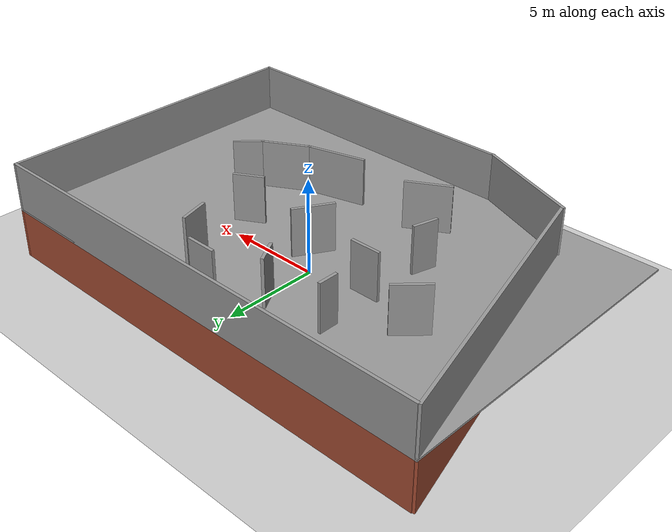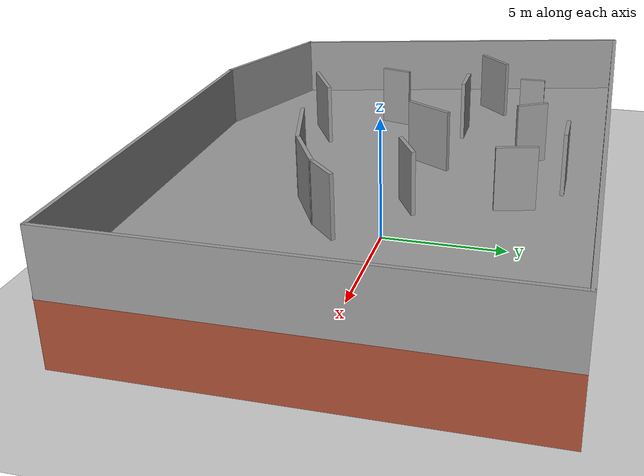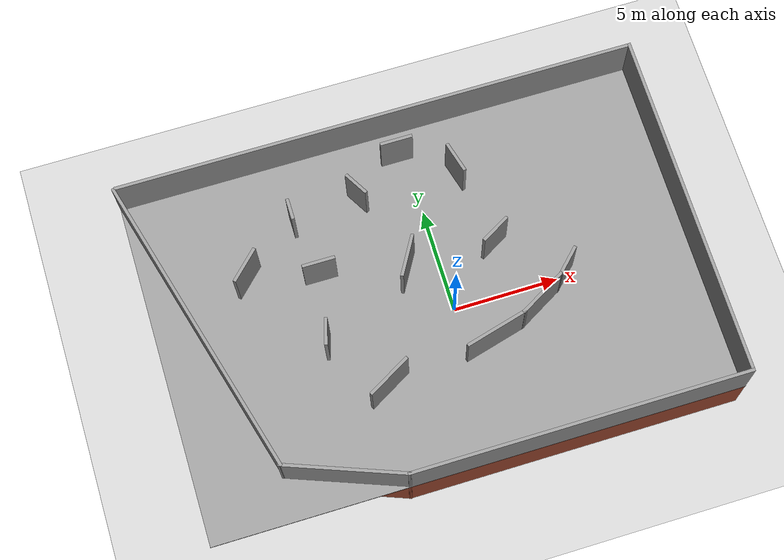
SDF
<sdf version="1.6">
 <world name="default">
  <light name="sun" type="directional">
   <pose>0 0 10 0 -0 0</pose>
   <diffuse>0.8 0.8 0.8 1</diffuse>
   <specular>0.2 0.2 0.2 1</specular>
   <attenuation>
    <range>1000</range>
    <constant>0.9</constant>
    <linear>0.01</linear>
    <quadratic>0.001</quadratic>
   </attenuation>
   <direction>-0.5 0.1 -0.9</direction>
  </light>
  <model name="ground_plane">
   <static>1</static>
   <link name="link">
    <collision name="collision">
     <geometry><plane><normal>0 0 1</normal><size>100 100</size></plane></geometry>
     <surface>
      <contact><collide_bitmask>65535</collide_bitmask></contact>
      <friction><ode><mu>100</mu><mu2>50</mu2></ode></friction>
     </surface>
    </collision>
    <visual name="visual">
     <cast_shadows>0</cast_shadows>
     <geometry><plane><normal>0 0 1</normal><size>100 100</size></plane></geometry>
     <material>
      <script><uri>file://media/materials/scripts/gazebo.material</uri><name>Gazebo/Grey</name></script>
     </material>
    </visual>
   </link>
  </model>
  <gravity>0 0 -9.8</gravity>
  <magnetic_field>6e-06 2.3e-05 -4.2e-05</magnetic_field>
  <atmosphere type="adiabatic"/>
  <physics name="default_physics" default="0" type="ode">
   <max_step_size>0.001</max_step_size>
   <real_time_factor>1</real_time_factor>
   <real_time_update_rate>1000</real_time_update_rate>
  </physics>
  <scene><ambient>0.4 0.4 0.4 1</ambient><background>0.7 0.7 0.7 1</background><shadows>1</shadows></scene>
  <spherical_coordinates>
   <surface_model>EARTH_WGS84</surface_model>
   <latitude_deg>0</latitude_deg>
   <longitude_deg>0</longitude_deg>
   <elevation>0</elevation>
   <heading_deg>0</heading_deg>
  </spherical_coordinates>
  <model name="locoindoor1">
   <pose>-1.25413 0.21493 0 0 -0 0</pose>
   <link name="Floor_0">
    <collision name="Floor_0_Collision">
     <geometry><box><size>24.3691 16.2718 0.1</size></box></geometry>
     <pose>0 0 0.05 0 -0 0</pose>
    </collision>
    <visual name="Floor_0_Visual">
     <pose>0 0 0.05 0 -0 0</pose>
     <geometry><box><size>24.3691 16.2718 0.1</size></box></geometry>
     <material>
      <script><uri>file://media/materials/scripts/gazebo.material</uri><name>Gazebo/Grey</name></script>
      <ambient>1 1 1 1</ambient>
     </material>
     <meta><layer>1</layer></meta>
    </visual>
    <pose>0 -0 2.5 0 -0 0</pose>
   </link>
   <link name="Wall_0">
    <collision name="Wall_0_Collision">
     <geometry><box><size>3 0.15 2.5</size></box></geometry>
     <pose>0 0 1.25 0 -0 0</pose>
    </collision>
    <visual name="Wall_0_Visual">
     <pose>0 0 1.25 0 -0 0</pose>
     <geometry><box><size>3 0.15 2.5</size></box></geometry>
     <material>
      <script><uri>file://media/materials/scripts/gazebo.material</uri><name>Gazebo/Bricks</name></script>
      <ambient>1 1 1 1</ambient>
     </material>
     <meta><layer>0</layer></meta>
    </visual>
    <pose>2.21057 -3.03611 0 0 -0 0.261799</pose>
   </link>
   <link name="Wall_1">
    <collision name="Wall_1_Collision">
     <geometry><box><size>2.5 0.15 2.5</size></box></geometry>
     <pose>0 0 1.25 0 -0 0</pose>
    </collision>
    <visual name="Wall_1_Visual">
     <pose>0 0 1.25 0 -0 0</pose>
     <geometry><box><size>2.5 0.15 2.5</size></box></geometry>
     <material>
      <script><uri>file://media/materials/scripts/gazebo.material</uri><name>Gazebo/Bricks</name></script>
      <ambient>1 1 1 1</ambient>
     </material>
     <meta><layer>0</layer></meta>
    </visual>
    <pose>4.6046 -2.0798 0 0 -0 0.523599</pose>
   </link>
   <link name="Wall_12">
    <collision name="Wall_12_Collision">
     <geometry><box><size>2 0.15 2.5</size></box></geometry>
     <pose>0 0 1.25 0 -0 0</pose>
    </collision>
    <visual name="Wall_12_Visual">
     <pose>0 0 1.25 0 -0 0</pose>
     <geometry><box><size>2 0.15 2.5</size></box></geometry>
     <material>
      <script><uri>file://media/materials/scripts/gazebo.material</uri><name>Gazebo/Bricks</name></script>
      <ambient>1 1 1 1</ambient>
     </material>
     <meta><layer>0</layer></meta>
    </visual>
    <pose>-0.528882 1.2835 0 0 -0 -2.0944</pose>
   </link>
   <link name="Wall_14">
    <collision name="Wall_14_Collision">
     <geometry><box><size>1.25 0.15 2.5</size></box></geometry>
     <pose>0 0 1.25 0 -0 0</pose>
    </collision>
    <visual name="Wall_14_Visual">
     <pose>0 0 1.25 0 -0 0</pose>
     <geometry><box><size>1.25 0.15 2.5</size></box></geometry>
     <material>
      <script><uri>file://media/materials/scripts/gazebo.material</uri><name>Gazebo/Bricks</name></script>
      <ambient>1 1 1 1</ambient>
     </material>
     <meta><layer>0</layer></meta>
    </visual>
    <pose>-1.72621 5.16131 0 0 -0 -1.0472</pose>
   </link>
   <link name="Wall_16">
    <collision name="Wall_16_Collision">
     <geometry><box><size>1.5 0.15 2.5</size></box></geometry>
     <pose>0 0 1.25 0 -0 0</pose>
    </collision>
    <visual name="Wall_16_Visual">
     <pose>0 0 1.25 0 -0 0</pose>
     <geometry><box><size>1.5 0.15 2.5</size></box></geometry>
     <material>
      <script><uri>file://media/materials/scripts/gazebo.material</uri><name>Gazebo/Bricks</name></script>
      <ambient>1 1 1 1</ambient>
     </material>
     <meta><layer>0</layer></meta>
    </visual>
    <pose>-4.32962 2.11975 0 0 -0 3.14159</pose>
   </link>
   <link name="Wall_18">
    <collision name="Wall_18_Collision">
     <geometry><box><size>1 0.15 2.5</size></box></geometry>
     <pose>0 0 1.25 0 -0 0</pose>
    </collision>
    <visual name="Wall_18_Visual">
     <pose>0 0 1.25 0 -0 0</pose>
     <geometry><box><size>1 0.15 2.5</size></box></geometry>
     <material>
      <script><uri>file://media/materials/scripts/gazebo.material</uri><name>Gazebo/Bricks</name></script>
      <ambient>1 1 1 1</ambient>
     </material>
     <meta><layer>0</layer></meta>
    </visual>
    <pose>-4.85069 4.86084 0 0 -0 -1.5708</pose>
   </link>
   <link name="Wall_2">
    <collision name="Wall_2_Collision">
     <geometry><box><size>1.5 0.15 2.5</size></box></geometry>
     <pose>0 0 1.25 0 -0 0</pose>
    </collision>
    <visual name="Wall_2_Visual">
     <pose>0 0 1.25 0 -0 0</pose>
     <geometry><box><size>1.5 0.15 2.5</size></box></geometry>
     <material>
      <script><uri>file://media/materials/scripts/gazebo.material</uri><name>Gazebo/Bricks</name></script>
      <ambient>1 1 1 1</ambient>
     </material>
     <meta><layer>0</layer></meta>
    </visual>
    <pose>6.09947 -1.015 0 0 -0 0.785398</pose>
   </link>
   <link name="Wall_20">
    <collision name="Wall_20_Collision">
     <geometry><box><size>1.25 0.15 2.5</size></box></geometry>
     <pose>0 0 1.25 0 -0 0</pose>
    </collision>
    <visual name="Wall_20_Visual">
     <pose>0 0 1.25 0 -0 0</pose>
     <geometry><box><size>1.25 0.15 2.5</size></box></geometry>
     <material>
      <script><uri>file://media/materials/scripts/gazebo.material</uri><name>Gazebo/Bricks</name></script>
      <ambient>1 1 1 1</ambient>
     </material>
     <meta><layer>0</layer></meta>
    </visual>
    <pose>-4.88751 -1.01474 0 0 -0 -1.8326</pose>
   </link>
   <link name="Wall_22">
    <collision name="Wall_22_Collision">
     <geometry><box><size>2.25 0.15 2.5</size></box></geometry>
     <pose>0 0 1.25 0 -0 0</pose>
    </collision>
    <visual name="Wall_22_Visual">
     <pose>0 0 1.25 0 -0 0</pose>
     <geometry><box><size>2.25 0.15 2.5</size></box></geometry>
     <material>
      <script><uri>file://media/materials/scripts/gazebo.material</uri><name>Gazebo/Bricks</name></script>
      <ambient>1 1 1 1</ambient>
     </material>
     <meta><layer>0</layer></meta>
    </visual>
    <pose>-2.85082 -3.72261 0 0 -0 0.523599</pose>
   </link>
   <link name="Wall_24">
    <collision name="Wall_24_Collision">
     <geometry><box><size>1.5 0.15 2.5</size></box></geometry>
     <pose>0 0 1.25 0 -0 0</pose>
    </collision>
    <visual name="Wall_24_Visual">
     <pose>0 0 1.25 0 -0 0</pose>
     <geometry><box><size>1.5 0.15 2.5</size></box></geometry>
     <material>
      <script><uri>file://media/materials/scripts/gazebo.material</uri><name>Gazebo/Bricks</name></script>
      <ambient>1 1 1 1</ambient>
     </material>
     <meta><layer>0</layer></meta>
    </visual>
    <pose>2.88744 5.09116 0 0 -0 -1.309</pose>
   </link>
   <link name="Wall_26">
    <collision name="Wall_26_Collision">
     <geometry><box><size>1.5 0.15 2.5</size></box></geometry>
     <pose>0 0 1.25 0 -0 0</pose>
    </collision>
    <visual name="Wall_26_Visual">
     <pose>0 0 1.25 0 -0 0</pose>
     <geometry><box><size>1.5 0.15 2.5</size></box></geometry>
     <material>
      <script><uri>file://media/materials/scripts/gazebo.material</uri><name>Gazebo/Bricks</name></script>
      <ambient>1 1 1 1</ambient>
     </material>
     <meta><layer>0</layer></meta>
    </visual>
    <pose>0.573439 6.65781 0 0 -0 0</pose>
   </link>
   <link name="Wall_28">
    <collision name="Wall_28_Collision">
     <geometry><box><size>1.75 0.15 2.5</size></box></geometry>
     <pose>0 0 1.25 0 -0 0</pose>
    </collision>
    <visual name="Wall_28_Visual">
     <pose>0 0 1.25 0 -0 0</pose>
     <geometry><box><size>1.75 0.15 2.5</size></box></geometry>
     <material>
      <script><uri>file://media/materials/scripts/gazebo.material</uri><name>Gazebo/Bricks</name></script>
      <ambient>1 1 1 1</ambient>
     </material>
     <meta><layer>0</layer></meta>
    </visual>
    <pose>-7.45675 2.92604 0 0 -0 -2.35619</pose>
   </link>
   <link name="Wall_30">
    <collision name="Wall_30_Collision">
     <geometry><box><size>1.5 0.15 2.5</size></box></geometry>
     <pose>0 0 1.25 0 -0 0</pose>
    </collision>
    <visual name="Wall_30_Visual">
     <pose>0 0 1.25 0 -0 0</pose>
     <geometry><box><size>1.5 0.15 2.5</size></box></geometry>
     <material>
      <script><uri>file://media/materials/scripts/gazebo.material</uri><name>Gazebo/Bricks</name></script>
      <ambient>1 1 1 1</ambient>
     </material>
     <meta><layer>0</layer></meta>
    </visual>
    <pose>3.53532 1.32493 0 0 -0 -2.61799</pose>
   </link>
   <link name="Wall_33">
    <collision name="Wall_33_Collision">
     <geometry><box><size>3 0.15 2.5</size></box></geometry>
     <pose>0 0 1.25 0 -0 0</pose>
    </collision>
    <visual name="Wall_33_Visual">
     <pose>0 0 1.25 0 -0 0</pose>
     <geometry><box><size>3 0.15 2.5</size></box></geometry>
     <material>
      <script><uri>file://media/materials/scripts/gazebo.material</uri><name>Gazebo/Grey</name></script>
      <ambient>1 1 1 1</ambient>
     </material>
     <meta><layer>1</layer></meta>
    </visual>
    <pose>2.21057 -3.03611 2.5 0 -0 0.261799</pose>
   </link>
   <link name="Wall_34">
    <collision name="Wall_34_Collision">
     <geometry><box><size>2.5 0.15 2.5</size></box></geometry>
     <pose>0 0 1.25 0 -0 0</pose>
    </collision>
    <visual name="Wall_34_Visual">
     <pose>0 0 1.25 0 -0 0</pose>
     <geometry><box><size>2.5 0.15 2.5</size></box></geometry>
     <material>
      <script><uri>file://media/materials/scripts/gazebo.material</uri><name>Gazebo/Grey</name></script>
      <ambient>1 1 1 1</ambient>
     </material>
     <meta><layer>1</layer></meta>
    </visual>
    <pose>4.6046 -2.0798 2.5 0 -0 0.523599</pose>
   </link>
   <link name="Wall_35">
    <collision name="Wall_35_Collision">
     <geometry><box><size>1.5 0.15 2.5</size></box></geometry>
     <pose>0 0 1.25 0 -0 0</pose>
    </collision>
    <visual name="Wall_35_Visual">
     <pose>0 0 1.25 0 -0 0</pose>
     <geometry><box><size>1.5 0.15 2.5</size></box></geometry>
     <material>
      <script><uri>file://media/materials/scripts/gazebo.material</uri><name>Gazebo/Grey</name></script>
      <ambient>1 1 1 1</ambient>
     </material>
     <meta><layer>1</layer></meta>
    </visual>
    <pose>6.09947 -1.015 2.5 0 -0 0.785398</pose>
   </link>
   <link name="Wall_36">
    <collision name="Wall_36_Collision">
     <geometry><box><size>14.75 0.15 2.5</size></box></geometry>
     <pose>0 0 1.25 0 -0 0</pose>
    </collision>
    <visual name="Wall_36_Visual">
     <pose>0 0 1.25 0 -0 0</pose>
     <geometry><box><size>14.75 0.15 2.5</size></box></geometry>
     <material>
      <script><uri>file://media/materials/scripts/gazebo.material</uri><name>Gazebo/Grey</name></script>
      <ambient>1 1 1 1</ambient>
     </material>
     <meta><layer>1</layer></meta>
    </visual>
    <pose>-10.2033 0.966639 2.5 0 -0 -1.309</pose>
   </link>
   <link name="Wall_37">
    <collision name="Wall_37_Collision">
     <geometry><box><size>5.61978 0.15 2.5</size></box></geometry>
     <pose>0 0 1.25 0 -0 0</pose>
    </collision>
    <visual name="Wall_37_Visual">
     <pose>0 0 1.25 0 -0 0</pose>
     <geometry><box><size>5.61978 0.15 2.5</size></box></geometry>
     <material>
      <script><uri>file://media/materials/scripts/gazebo.material</uri><name>Gazebo/Grey</name></script>
      <ambient>1 1 1 1</ambient>
     </material>
     <meta><layer>1</layer></meta>
    </visual>
    <pose>-5.79478 -7.06185 2.5 0 -0 -0.365396</pose>
   </link>
   <link name="Wall_38">
    <collision name="Wall_38_Collision">
     <geometry><box><size>15.5 0.15 2.5</size></box></geometry>
     <pose>0 0 1.25 0 -0 0</pose>
    </collision>
    <visual name="Wall_38_Visual">
     <pose>0 0 1.25 0 -0 0</pose>
     <geometry><box><size>15.5 0.15 2.5</size></box></geometry>
     <material>
      <script><uri>file://media/materials/scripts/gazebo.material</uri><name>Gazebo/Grey</name></script>
      <ambient>1 1 1 1</ambient>
     </material>
     <meta><layer>1</layer></meta>
    </visual>
    <pose>4.43456 -8.03908 2.5 0 -0 0</pose>
   </link>
   <link name="Wall_39">
    <collision name="Wall_39_Collision">
     <geometry><box><size>16.25 0.15 2.5</size></box></geometry>
     <pose>0 0 1.25 0 -0 0</pose>
    </collision>
    <visual name="Wall_39_Visual">
     <pose>0 0 1.25 0 -0 0</pose>
     <geometry><box><size>16.25 0.15 2.5</size></box></geometry>
     <material>
      <script><uri>file://media/materials/scripts/gazebo.material</uri><name>Gazebo/Grey</name></script>
      <ambient>1 1 1 1</ambient>
     </material>
     <meta><layer>1</layer></meta>
    </visual>
    <pose>12.1096 0.010923 2.5 0 -0 1.5708</pose>
   </link>
   <link name="Wall_40">
    <collision name="Wall_40_Collision">
     <geometry><box><size>24.25 0.15 2.5</size></box></geometry>
     <pose>0 0 1.25 0 -0 0</pose>
    </collision>
    <visual name="Wall_40_Visual">
     <pose>0 0 1.25 0 -0 0</pose>
     <geometry><box><size>24.25 0.15 2.5</size></box></geometry>
     <material>
      <script><uri>file://media/materials/scripts/gazebo.material</uri><name>Gazebo/Grey</name></script>
      <ambient>1 1 1 1</ambient>
     </material>
     <meta><layer>1</layer></meta>
    </visual>
    <pose>0.059555 8.06092 2.5 0 -0 3.14159</pose>
   </link>
   <link name="Wall_41">
    <collision name="Wall_41_Collision">
     <geometry><box><size>2 0.15 2.5</size></box></geometry>
     <pose>0 0 1.25 0 -0 0</pose>
    </collision>
    <visual name="Wall_41_Visual">
     <pose>0 0 1.25 0 -0 0</pose>
     <geometry><box><size>2 0.15 2.5</size></box></geometry>
     <material>
      <script><uri>file://media/materials/scripts/gazebo.material</uri><name>Gazebo/Grey</name></script>
      <ambient>1 1 1 1</ambient>
     </material>
     <meta><layer>1</layer></meta>
    </visual>
    <pose>-0.528882 1.2835 2.5 0 -0 -2.0944</pose>
   </link>
   <link name="Wall_42">
    <collision name="Wall_42_Collision">
     <geometry><box><size>1.25 0.15 2.5</size></box></geometry>
     <pose>0 0 1.25 0 -0 0</pose>
    </collision>
    <visual name="Wall_42_Visual">
     <pose>0 0 1.25 0 -0 0</pose>
     <geometry><box><size>1.25 0.15 2.5</size></box></geometry>
     <material>
      <script><uri>file://media/materials/scripts/gazebo.material</uri><name>Gazebo/Grey</name></script>
      <ambient>1 1 1 1</ambient>
     </material>
     <meta><layer>1</layer></meta>
    </visual>
    <pose>-1.72621 5.16131 2.5 0 -0 -1.0472</pose>
   </link>
   <link name="Wall_43">
    <collision name="Wall_43_Collision">
     <geometry><box><size>1.5 0.15 2.5</size></box></geometry>
     <pose>0 0 1.25 0 -0 0</pose>
    </collision>
    <visual name="Wall_43_Visual">
     <pose>0 0 1.25 0 -0 0</pose>
     <geometry><box><size>1.5 0.15 2.5</size></box></geometry>
     <material>
      <script><uri>file://media/materials/scripts/gazebo.material</uri><name>Gazebo/Grey</name></script>
      <ambient>1 1 1 1</ambient>
     </material>
     <meta><layer>1</layer></meta>
    </visual>
    <pose>-4.32962 2.11975 2.5 0 -0 3.14159</pose>
   </link>
   <link name="Wall_44">
    <collision name="Wall_44_Collision">
     <geometry><box><size>1 0.15 2.5</size></box></geometry>
     <pose>0 0 1.25 0 -0 0</pose>
    </collision>
    <visual name="Wall_44_Visual">
     <pose>0 0 1.25 0 -0 0</pose>
     <geometry><box><size>1 0.15 2.5</size></box></geometry>
     <material>
      <script><uri>file://media/materials/scripts/gazebo.material</uri><name>Gazebo/Grey</name></script>
      <ambient>1 1 1 1</ambient>
     </material>
     <meta><layer>1</layer></meta>
    </visual>
    <pose>-4.85069 4.86084 2.5 0 -0 -1.5708</pose>
   </link>
   <link name="Wall_45">
    <collision name="Wall_45_Collision">
     <geometry><box><size>1.25 0.15 2.5</size></box></geometry>
     <pose>0 0 1.25 0 -0 0</pose>
    </collision>
    <visual name="Wall_45_Visual">
     <pose>0 0 1.25 0 -0 0</pose>
     <geometry><box><size>1.25 0.15 2.5</size></box></geometry>
     <material>
      <script><uri>file://media/materials/scripts/gazebo.material</uri><name>Gazebo/Grey</name></script>
      <ambient>1 1 1 1</ambient>
     </material>
     <meta><layer>1</layer></meta>
    </visual>
    <pose>-4.88751 -1.01474 2.5 0 -0 -1.8326</pose>
   </link>
   <link name="Wall_46">
    <collision name="Wall_46_Collision">
     <geometry><box><size>2.25 0.15 2.5</size></box></geometry>
     <pose>0 0 1.25 0 -0 0</pose>
    </collision>
    <visual name="Wall_46_Visual">
     <pose>0 0 1.25 0 -0 0</pose>
     <geometry><box><size>2.25 0.15 2.5</size></box></geometry>
     <material>
      <script><uri>file://media/materials/scripts/gazebo.material</uri><name>Gazebo/Grey</name></script>
      <ambient>1 1 1 1</ambient>
     </material>
     <meta><layer>1</layer></meta>
    </visual>
    <pose>-2.85082 -3.72261 2.5 0 -0 0.523599</pose>
   </link>
   <link name="Wall_47">
    <collision name="Wall_47_Collision">
     <geometry><box><size>1.5 0.15 2.5</size></box></geometry>
     <pose>0 0 1.25 0 -0 0</pose>
    </collision>
    <visual name="Wall_47_Visual">
     <pose>0 0 1.25 0 -0 0</pose>
     <geometry><box><size>1.5 0.15 2.5</size></box></geometry>
     <material>
      <script><uri>file://media/materials/scripts/gazebo.material</uri><name>Gazebo/Grey</name></script>
      <ambient>1 1 1 1</ambient>
     </material>
     <meta><layer>1</layer></meta>
    </visual>
    <pose>2.88744 5.09116 2.5 0 -0 -1.309</pose>
   </link>
   <link name="Wall_48">
    <collision name="Wall_48_Collision">
     <geometry><box><size>1.5 0.15 2.5</size></box></geometry>
     <pose>0 0 1.25 0 -0 0</pose>
    </collision>
    <visual name="Wall_48_Visual">
     <pose>0 0 1.25 0 -0 0</pose>
     <geometry><box><size>1.5 0.15 2.5</size></box></geometry>
     <material>
      <script><uri>file://media/materials/scripts/gazebo.material</uri><name>Gazebo/Grey</name></script>
      <ambient>1 1 1 1</ambient>
     </material>
     <meta><layer>1</layer></meta>
    </visual>
    <pose>0.573439 6.65781 2.5 0 -0 0</pose>
   </link>
   <link name="Wall_49">
    <collision name="Wall_49_Collision">
     <geometry><box><size>1.75 0.15 2.5</size></box></geometry>
     <pose>0 0 1.25 0 -0 0</pose>
    </collision>
    <visual name="Wall_49_Visual">
     <pose>0 0 1.25 0 -0 0</pose>
     <geometry><box><size>1.75 0.15 2.5</size></box></geometry>
     <material>
      <script><uri>file://media/materials/scripts/gazebo.material</uri><name>Gazebo/Grey</name></script>
      <ambient>1 1 1 1</ambient>
     </material>
     <meta><layer>1</layer></meta>
    </visual>
    <pose>-7.45675 2.92604 2.5 0 -0 -2.35619</pose>
   </link>
   <link name="Wall_5">
    <collision name="Wall_5_Collision">
     <geometry><box><size>14.75 0.15 2.5</size></box></geometry>
     <pose>0 0 1.25 0 -0 0</pose>
    </collision>
    <visual name="Wall_5_Visual">
     <pose>0 0 1.25 0 -0 0</pose>
     <geometry><box><size>14.75 0.15 2.5</size></box></geometry>
     <material>
      <script><uri>file://media/materials/scripts/gazebo.material</uri><name>Gazebo/Bricks</name></script>
      <ambient>1 1 1 1</ambient>
     </material>
     <meta><layer>0</layer></meta>
    </visual>
    <pose>-10.2033 0.966639 0 0 -0 -1.309</pose>
   </link>
   <link name="Wall_50">
    <collision name="Wall_50_Collision">
     <geometry><box><size>1.5 0.15 2.5</size></box></geometry>
     <pose>0 0 1.25 0 -0 0</pose>
    </collision>
    <visual name="Wall_50_Visual">
     <pose>0 0 1.25 0 -0 0</pose>
     <geometry><box><size>1.5 0.15 2.5</size></box></geometry>
     <material>
      <script><uri>file://media/materials/scripts/gazebo.material</uri><name>Gazebo/Grey</name></script>
      <ambient>1 1 1 1</ambient>
     </material>
     <meta><layer>1</layer></meta>
    </visual>
    <pose>3.53532 1.32493 2.5 0 -0 -2.61799</pose>
   </link>
   <link name="Wall_6">
    <collision name="Wall_6_Collision">
     <geometry><box><size>5.61978 0.15 2.5</size></box></geometry>
     <pose>0 0 1.25 0 -0 0</pose>
    </collision>
    <visual name="Wall_6_Visual">
     <pose>0 0 1.25 0 -0 0</pose>
     <geometry><box><size>5.61978 0.15 2.5</size></box></geometry>
     <material>
      <script><uri>file://media/materials/scripts/gazebo.material</uri><name>Gazebo/Bricks</name></script>
      <ambient>1 1 1 1</ambient>
     </material>
     <meta><layer>0</layer></meta>
    </visual>
    <pose>-5.79478 -7.06185 0 0 -0 -0.365396</pose>
   </link>
   <link name="Wall_7">
    <collision name="Wall_7_Collision">
     <geometry><box><size>15.5 0.15 2.5</size></box></geometry>
     <pose>0 0 1.25 0 -0 0</pose>
    </collision>
    <visual name="Wall_7_Visual">
     <pose>0 0 1.25 0 -0 0</pose>
     <geometry><box><size>15.5 0.15 2.5</size></box></geometry>
     <material>
      <script><uri>file://media/materials/scripts/gazebo.material</uri><name>Gazebo/Bricks</name></script>
      <ambient>1 1 1 1</ambient>
     </material>
     <meta><layer>0</layer></meta>
    </visual>
    <pose>4.43456 -8.03908 0 0 -0 0</pose>
   </link>
   <link name="Wall_8">
    <collision name="Wall_8_Collision">
     <geometry><box><size>16.25 0.15 2.5</size></box></geometry>
     <pose>0 0 1.25 0 -0 0</pose>
    </collision>
    <visual name="Wall_8_Visual">
     <pose>0 0 1.25 0 -0 0</pose>
     <geometry><box><size>16.25 0.15 2.5</size></box></geometry>
     <material>
      <script><uri>file://media/materials/scripts/gazebo.material</uri><name>Gazebo/Bricks</name></script>
      <ambient>1 1 1 1</ambient>
     </material>
     <meta><layer>0</layer></meta>
    </visual>
    <pose>12.1096 0.010923 0 0 -0 1.5708</pose>
   </link>
   <link name="Wall_9">
    <collision name="Wall_9_Collision">
     <geometry><box><size>24.25 0.15 2.5</size></box></geometry>
     <pose>0 0 1.25 0 -0 0</pose>
    </collision>
    <visual name="Wall_9_Visual">
     <pose>0 0 1.25 0 -0 0</pose>
     <geometry><box><size>24.25 0.15 2.5</size></box></geometry>
     <material>
      <script><uri>file://media/materials/scripts/gazebo.material</uri><name>Gazebo/Bricks</name></script>
      <ambient>1 1 1 1</ambient>
     </material>
     <meta><layer>0</layer></meta>
    </visual>
    <pose>0.059555 8.06092 0 0 -0 3.14159</pose>
   </link>
   <static>1</static>
  </model>
  <model name="landing_pad">
   <static>1</static>
   <link name="link">
    <collision name="collision"><geometry><box><size>0.3 0.3 0.12</size></box></geometry></collision>
    <visual name="visual">
     <cast_shadows>0</cast_shadows>
     <geometry><box><size>0.3 0.3 0.12</size></box></geometry>
     <material>
      <script>
       <uri>model://landing_pad/materials/scripts</uri>
       <uri>model://landing_pad/materials/textures</uri>
       <name>vrc/landing_pad</name>
      </script>
     </material>
    </visual>
   </link>
   <pose>2.86124 -0.047741 -0.05 0 -0 0</pose>
  </model>
 </world>
</sdf>
